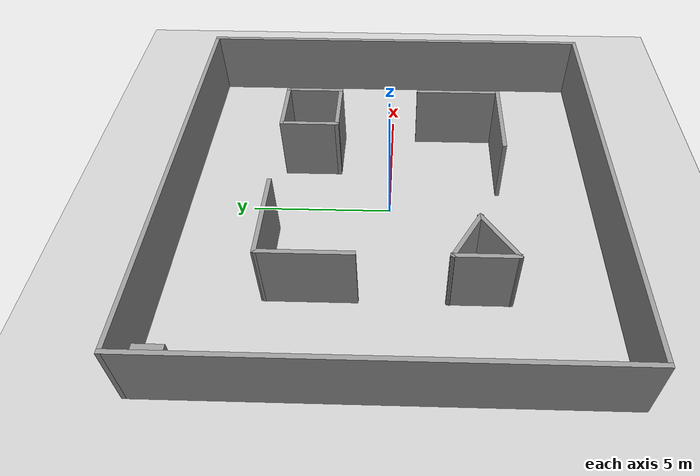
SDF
<sdf version="1.7">
 <world name="default">
  <light name="sun" type="directional">
   <pose>0 0 10 0 -0 0</pose>
   <diffuse>0.8 0.8 0.8 1</diffuse>
   <specular>0.2 0.2 0.2 1</specular>
   <attenuation>
    <range>1000</range>
    <constant>0.9</constant>
    <linear>0.01</linear>
    <quadratic>0.001</quadratic>
   </attenuation>
   <direction>-0.5 0.1 -0.9</direction>
   <spot><inner_angle>0</inner_angle><outer_angle>0</outer_angle><falloff>0</falloff></spot>
  </light>
  <model name="ground_plane">
   <static>1</static>
   <link name="link">
    <collision name="collision">
     <geometry><plane><normal>0 0 1</normal><size>100 100</size></plane></geometry>
     <surface>
      <contact><collide_bitmask>65535</collide_bitmask></contact>
      <friction><ode><mu>100</mu><mu2>50</mu2></ode></friction>
     </surface>
    </collision>
    <visual name="visual">
     <cast_shadows>0</cast_shadows>
     <geometry><plane><normal>0 0 1</normal><size>100 100</size></plane></geometry>
     <material>
      <script><uri>file://media/materials/scripts/gazebo.material</uri><name>Gazebo/Grey</name></script>
     </material>
    </visual>
   </link>
  </model>
  <gravity>0 0 -9.8</gravity>
  <magnetic_field>6e-06 2.3e-05 -4.2e-05</magnetic_field>
  <atmosphere type="adiabatic"/>
  <physics type="ode">
   <max_step_size>0.001</max_step_size>
   <real_time_factor>1</real_time_factor>
   <real_time_update_rate>1000</real_time_update_rate>
  </physics>
  <scene><ambient>0.4 0.4 0.4 1</ambient><background>0.7 0.7 0.7 1</background><shadows>1</shadows></scene>
  <spherical_coordinates>
   <surface_model>EARTH_WGS84</surface_model>
   <latitude_deg>0</latitude_deg>
   <longitude_deg>0</longitude_deg>
   <elevation>0</elevation>
   <heading_deg>0</heading_deg>
  </spherical_coordinates>
  <model name="15*15c">
   <link name="Wall_11">
    <collision name="Wall_11_Collision">
     <geometry><box><size>15.15 0.15 2.5</size></box></geometry>
     <pose>0 0 1.25 0 -0 0</pose>
    </collision>
    <visual name="Wall_11_Visual">
     <pose>0 0 1.25 0 -0 0</pose>
     <geometry><box><size>15.15 0.15 2.5</size></box></geometry>
     <material>
      <script><uri>file://media/materials/scripts/gazebo.material</uri><name>Gazebo/Grey</name></script>
      <ambient>1 1 1 1</ambient>
     </material>
     <meta><layer>0</layer></meta>
    </visual>
    <pose>-7.5 0 0 0 -0 -1.5708</pose>
   </link>
   <link name="Wall_13">
    <collision name="Wall_13_Collision">
     <geometry><box><size>15.15 0.15 2.5</size></box></geometry>
     <pose>0 0 1.25 0 -0 0</pose>
    </collision>
    <visual name="Wall_13_Visual">
     <pose>0 0 1.25 0 -0 0</pose>
     <geometry><box><size>15.15 0.15 2.5</size></box></geometry>
     <material>
      <script><uri>file://media/materials/scripts/gazebo.material</uri><name>Gazebo/Grey</name></script>
      <ambient>1 1 1 1</ambient>
     </material>
     <meta><layer>0</layer></meta>
    </visual>
    <pose>0 -7.5 0 0 -0 0</pose>
   </link>
   <link name="Wall_15">
    <collision name="Wall_15_Collision">
     <geometry><box><size>2.15 0.15 2.5</size></box></geometry>
     <pose>0 0 1.25 0 -0 0</pose>
    </collision>
    <visual name="Wall_15_Visual">
     <pose>0 0 1.25 0 -0 0</pose>
     <geometry><box><size>2.15 0.15 2.5</size></box></geometry>
     <material>
      <script><uri>file://media/materials/scripts/gazebo.material</uri><name>Gazebo/Grey</name></script>
      <ambient>1 1 1 1</ambient>
     </material>
     <meta><layer>0</layer></meta>
    </visual>
    <pose>3 4 0 0 -0 0</pose>
   </link>
   <link name="Wall_16">
    <collision name="Wall_16_Collision">
     <geometry><box><size>2.15 0.15 2.5</size></box></geometry>
     <pose>0 0 1.25 0 -0 0</pose>
    </collision>
    <visual name="Wall_16_Visual">
     <pose>0 0 1.25 0 -0 0</pose>
     <geometry><box><size>2.15 0.15 2.5</size></box></geometry>
     <material>
      <script><uri>file://media/materials/scripts/gazebo.material</uri><name>Gazebo/Grey</name></script>
      <ambient>1 1 1 1</ambient>
     </material>
     <meta><layer>0</layer></meta>
    </visual>
    <pose>4 3 0 0 -0 -1.5708</pose>
   </link>
   <link name="Wall_17">
    <collision name="Wall_17_Collision">
     <geometry><box><size>2.15 0.15 2.5</size></box></geometry>
     <pose>0 0 1.25 0 -0 0</pose>
    </collision>
    <visual name="Wall_17_Visual">
     <pose>0 0 1.25 0 -0 0</pose>
     <geometry><box><size>2.15 0.15 2.5</size></box></geometry>
     <material>
      <script><uri>file://media/materials/scripts/gazebo.material</uri><name>Gazebo/Grey</name></script>
      <ambient>1 1 1 1</ambient>
     </material>
     <meta><layer>0</layer></meta>
    </visual>
    <pose>3 2 0 0 -0 3.14159</pose>
   </link>
   <link name="Wall_18">
    <collision name="Wall_18_Collision">
     <geometry><box><size>2.15 0.15 2.5</size></box></geometry>
     <pose>0 0 1.25 0 -0 0</pose>
    </collision>
    <visual name="Wall_18_Visual">
     <pose>0 0 1.25 0 -0 0</pose>
     <geometry><box><size>2.15 0.15 2.5</size></box></geometry>
     <material>
      <script><uri>file://media/materials/scripts/gazebo.material</uri><name>Gazebo/Grey</name></script>
      <ambient>1 1 1 1</ambient>
     </material>
     <meta><layer>0</layer></meta>
    </visual>
    <pose>2 3 0 0 -0 1.5708</pose>
   </link>
   <link name="Wall_20">
    <collision name="Wall_20_Collision">
     <geometry><box><size>3.15 0.15 2.5</size></box></geometry>
     <pose>0 0 1.25 0 -0 0</pose>
    </collision>
    <visual name="Wall_20_Visual">
     <pose>0 0 1.25 0 -0 0</pose>
     <geometry><box><size>3.15 0.15 2.5</size></box></geometry>
     <material>
      <script><uri>file://media/materials/scripts/gazebo.material</uri><name>Gazebo/Grey</name></script>
      <ambient>1 1 1 1</ambient>
     </material>
     <meta><layer>0</layer></meta>
    </visual>
    <pose>-2.5 4.0005 0 0 -0 -0.000333</pose>
   </link>
   <link name="Wall_22">
    <collision name="Wall_22_Collision">
     <geometry><box><size>3.151 0.15 2.5</size></box></geometry>
     <pose>0 0 1.25 0 -0 0</pose>
    </collision>
    <visual name="Wall_22_Visual">
     <pose>0 0 1.25 0 -0 0</pose>
     <geometry><box><size>3.151 0.15 2.5</size></box></geometry>
     <material>
      <script><uri>file://media/materials/scripts/gazebo.material</uri><name>Gazebo/Grey</name></script>
      <ambient>1 1 1 1</ambient>
     </material>
     <meta><layer>0</layer></meta>
    </visual>
    <pose>-4 2.5005 0 0 -0 -1.5708</pose>
   </link>
   <link name="Wall_24">
    <collision name="Wall_24_Collision">
     <geometry><box><size>2.15 0.15 2.5</size></box></geometry>
     <pose>0 0 1.25 0 -0 0</pose>
    </collision>
    <visual name="Wall_24_Visual">
     <pose>0 0 1.25 0 -0 0</pose>
     <geometry><box><size>2.15 0.15 2.5</size></box></geometry>
     <material>
      <script><uri>file://media/materials/scripts/gazebo.material</uri><name>Gazebo/Grey</name></script>
      <ambient>1 1 1 1</ambient>
     </material>
     <meta><layer>0</layer></meta>
    </visual>
    <pose>-4 -3 0 0 -0 -1.5708</pose>
   </link>
   <link name="Wall_26">
    <collision name="Wall_26_Collision">
     <geometry><box><size>2 0.15 2.5</size></box></geometry>
     <pose>0 0 1.25 0 -0 0</pose>
    </collision>
    <visual name="Wall_26_Visual">
     <pose>0 0 1.25 0 -0 0</pose>
     <geometry><box><size>2 0.15 2.5</size></box></geometry>
     <material>
      <script><uri>file://media/materials/scripts/gazebo.material</uri><name>Gazebo/Grey</name></script>
      <ambient>1 1 1 1</ambient>
     </material>
     <meta><layer>0</layer></meta>
    </visual>
    <pose>-3.19893 -2.4625 0 0 -0 -0.523599</pose>
   </link>
   <link name="Wall_27">
    <collision name="Wall_27_Collision">
     <geometry><box><size>2.07938 0.15 2.5</size></box></geometry>
     <pose>0 0 1.25 0 -0 0</pose>
    </collision>
    <visual name="Wall_27_Visual">
     <pose>0 0 1.25 0 -0 0</pose>
     <geometry><box><size>2.07938 0.15 2.5</size></box></geometry>
     <material>
      <script><uri>file://media/materials/scripts/gazebo.material</uri><name>Gazebo/Grey</name></script>
      <ambient>1 1 1 1</ambient>
     </material>
     <meta><layer>0</layer></meta>
    </visual>
    <pose>-3.19893 -3.4625 0 0 -0 -2.55061</pose>
   </link>
   <link name="Wall_3">
    <collision name="Wall_3_Collision">
     <geometry><box><size>0.15 0.15 2.5</size></box></geometry>
     <pose>0 0 1.25 0 -0 0</pose>
    </collision>
    <visual name="Wall_3_Visual">
     <pose>0 0 1.25 0 -0 0</pose>
     <geometry><box><size>0.15 0.15 2.5</size></box></geometry>
     <material>
      <script><uri>file://media/materials/scripts/gazebo.material</uri><name>Gazebo/Grey</name></script>
      <ambient>1 1 1 1</ambient>
     </material>
     <meta><layer>0</layer></meta>
    </visual>
    <pose>-7.5 -7.5 0 0 -0 0</pose>
   </link>
   <link name="Wall_32">
    <collision name="Wall_32_Collision">
     <geometry><box><size>3.15 0.15 2.5</size></box></geometry>
     <pose>0 0 1.25 0 -0 0</pose>
    </collision>
    <visual name="Wall_32_Visual">
     <pose>0 0 1.25 0 -0 0</pose>
     <geometry><box><size>3.15 0.15 2.5</size></box></geometry>
     <material>
      <script><uri>file://media/materials/scripts/gazebo.material</uri><name>Gazebo/Grey</name></script>
      <ambient>1 1 1 1</ambient>
     </material>
     <meta><layer>0</layer></meta>
    </visual>
    <pose>2.5 -4 0 0 -0 0</pose>
   </link>
   <link name="Wall_33">
    <collision name="Wall_33_Collision">
     <geometry><box><size>3.15 0.15 2.5</size></box></geometry>
     <pose>0 0 1.25 0 -0 0</pose>
    </collision>
    <visual name="Wall_33_Visual">
     <pose>0 0 1.25 0 -0 0</pose>
     <geometry><box><size>3.15 0.15 2.5</size></box></geometry>
     <material>
      <script><uri>file://media/materials/scripts/gazebo.material</uri><name>Gazebo/Grey</name></script>
      <ambient>1 1 1 1</ambient>
     </material>
     <meta><layer>0</layer></meta>
    </visual>
    <pose>4 -2.5 0 0 -0 1.5708</pose>
   </link>
   <link name="Wall_6">
    <collision name="Wall_6_Collision">
     <geometry><box><size>15.15 0.15 2.5</size></box></geometry>
     <pose>0 0 1.25 0 -0 0</pose>
    </collision>
    <visual name="Wall_6_Visual">
     <pose>0 0 1.25 0 -0 0</pose>
     <geometry><box><size>15.15 0.15 2.5</size></box></geometry>
     <material>
      <script><uri>file://media/materials/scripts/gazebo.material</uri><name>Gazebo/Grey</name></script>
      <ambient>1 1 1 1</ambient>
     </material>
     <meta><layer>0</layer></meta>
    </visual>
    <pose>0 7.5 0 0 -0 0</pose>
   </link>
   <link name="Wall_9">
    <collision name="Wall_9_Collision">
     <geometry><box><size>15.15 0.15 2.5</size></box></geometry>
     <pose>0 0 1.25 0 -0 0</pose>
    </collision>
    <visual name="Wall_9_Visual">
     <pose>0 0 1.25 0 -0 0</pose>
     <geometry><box><size>15.15 0.15 2.5</size></box></geometry>
     <material>
      <script><uri>file://media/materials/scripts/gazebo.material</uri><name>Gazebo/Grey</name></script>
      <ambient>1 1 1 1</ambient>
     </material>
     <meta><layer>0</layer></meta>
    </visual>
    <pose>7.5 0 0 0 -0 -1.5708</pose>
   </link>
   <static>1</static>
  </model>
  <model name="unit_box">
   <pose>-6.84966 6.89839 0.499995 -1e-05 -0 -0</pose>
   <link name="link">
    <inertial>
     <mass>1</mass>
     <inertia>
      <ixx>0.166667</ixx>
      <ixy>0</ixy>
      <ixz>0</ixz>
      <iyy>0.166667</iyy>
      <iyz>0</iyz>
      <izz>0.166667</izz>
     </inertia>
    </inertial>
    <collision name="collision"><geometry><box><size>1 1 1</size></box></geometry></collision>
    <visual name="visual">
     <geometry><box><size>1 1 1</size></box></geometry>
     <material>
      <script><name>Gazebo/Grey</name><uri>file://media/materials/scripts/gazebo.material</uri></script>
     </material>
    </visual>
   </link>
  </model>
 </world>
</sdf>
